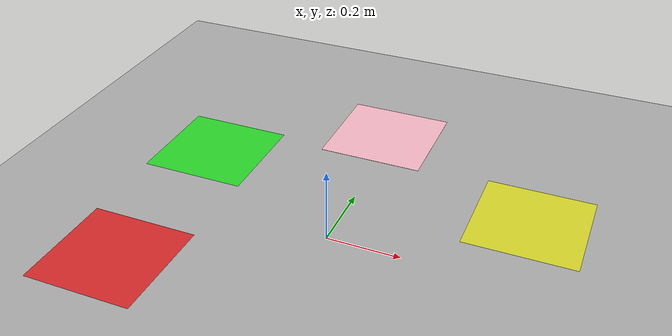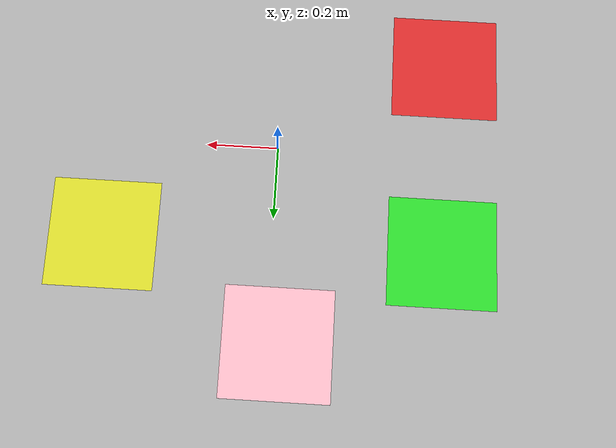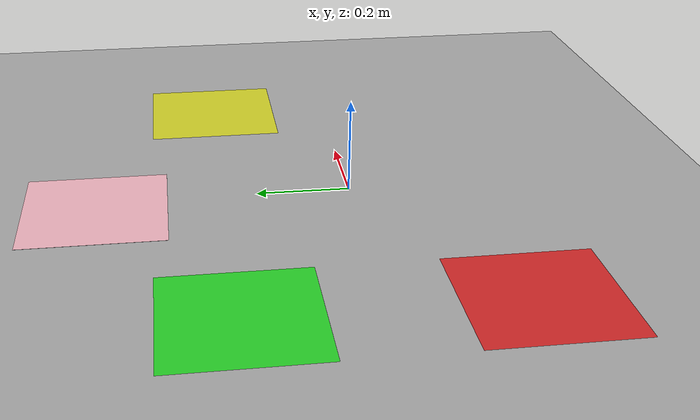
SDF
<sdf version="1.7">
 <world name="default">
  <light name="sun" type="directional">
   <pose>0 0 10 0 -0 0</pose>
   <diffuse>0.8 0.8 0.8 1</diffuse>
   <specular>0.2 0.2 0.2 1</specular>
   <attenuation>
    <range>1000</range>
    <constant>0.9</constant>
    <linear>0.01</linear>
    <quadratic>0.001</quadratic>
   </attenuation>
   <direction>-0.5 0.1 -0.9</direction>
   <spot><inner_angle>0</inner_angle><outer_angle>0</outer_angle><falloff>0</falloff></spot>
  </light>
  <model name="ground_plane">
   <static>1</static>
   <link name="link">
    <collision name="collision">
     <geometry><plane><normal>0 0 1</normal><size>100 100</size></plane></geometry>
     <surface><friction><ode><mu>100</mu><mu2>50</mu2></ode></friction></surface>
    </collision>
    <visual name="visual">
     <cast_shadows>0</cast_shadows>
     <geometry><plane><normal>0 0 1</normal><size>100 100</size></plane></geometry>
     <material>
      <ambient>0.7 0.7 0.7 1</ambient>
      <diffuse>0.7 0.7 0.7 1</diffuse>
      <specular>0.1 0.1 0.1 1</specular>
     </material>
    </visual>
   </link>
  </model>
  <model name="marker_spawn">
   <static>1</static>
   <link name="link">
    <visual name="visual">
     <geometry><plane><normal>0 0 1</normal><size>0.3 0.3</size></plane></geometry>
     <material>
      <ambient>1 0.75 0.8 1</ambient>
      <diffuse>1 0.75 0.8 1</diffuse>
      <specular>0.1 0.1 0.1 1</specular>
     </material>
    </visual>
   </link>
   <pose>-0.03 0.54 0.001 0 0 0</pose>
  </model>
  <model name="marker_green">
   <static>1</static>
   <link name="link">
    <visual name="visual">
     <geometry><plane><normal>0 0 1</normal><size>0.3 0.3</size></plane></geometry>
     <material>
      <ambient>0 1 0 0.7</ambient>
      <diffuse>0 1 0 0.7</diffuse>
      <specular>0.1 0.1 0.1 1</specular>
     </material>
    </visual>
   </link>
   <pose>-0.468 0.27 0.001 0 0 0</pose>
  </model>
  <model name="marker_red">
   <static>1</static>
   <link name="link">
    <visual name="visual">
     <geometry><plane><normal>0 0 1</normal><size>0.3 0.3</size></plane></geometry>
     <material>
      <ambient>1 0 0 0.7</ambient>
      <diffuse>1 0 0 0.7</diffuse>
      <specular>0.1 0.1 0.1 1</specular>
     </material>
    </visual>
   </link>
   <pose>-0.468 -0.27 0.001 0 0 0</pose>
  </model>
  <model name="marker_yellow">
   <static>1</static>
   <link name="link">
    <visual name="visual">
     <geometry><plane><normal>0 0 1</normal><size>0.3 0.3</size></plane></geometry>
     <material>
      <ambient>1 1 0 0.7</ambient>
      <diffuse>1 1 0 0.7</diffuse>
      <specular>0.1 0.1 0.1 1</specular>
     </material>
    </visual>
   </link>
   <pose>0.468 0.27 0.001 0 0 0</pose>
  </model>
  <gravity>0 0 -9.8</gravity>
  <magnetic_field>6e-06 2.3e-05 -4.2e-05</magnetic_field>
  <atmosphere type="adiabatic"/>
  <physics type="ode">
   <max_step_size>0.001</max_step_size>
   <real_time_factor>1</real_time_factor>
   <real_time_update_rate>1000</real_time_update_rate>
  </physics>
  <scene><ambient>0.9 0.9 0.9 1</ambient><background>0.98 0.98 0.98 1</background><shadows>1</shadows></scene>
  <audio><device>default</device></audio>
  <spherical_coordinates>
   <surface_model>EARTH_WGS84</surface_model>
   <latitude_deg>0</latitude_deg>
   <longitude_deg>0</longitude_deg>
   <elevation>0</elevation>
   <heading_deg>0</heading_deg>
  </spherical_coordinates>
 </world>
</sdf>
